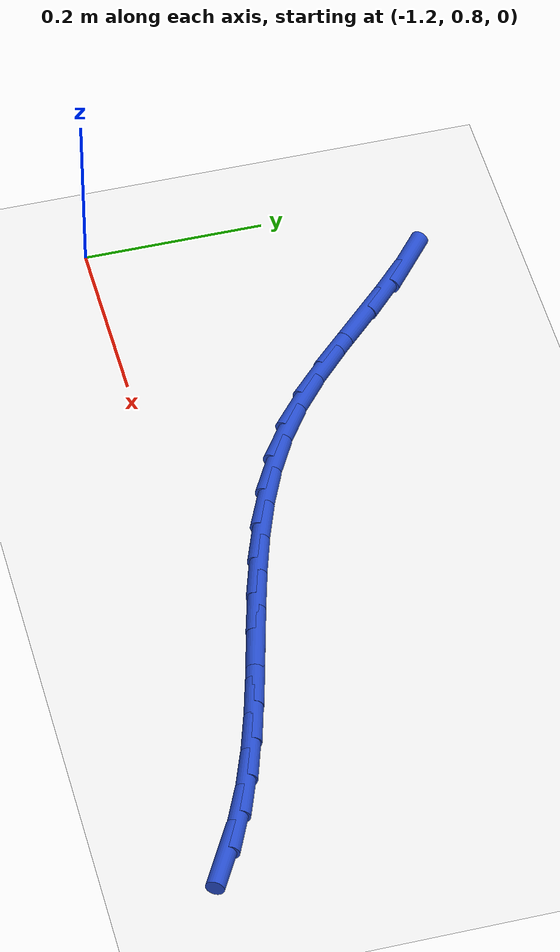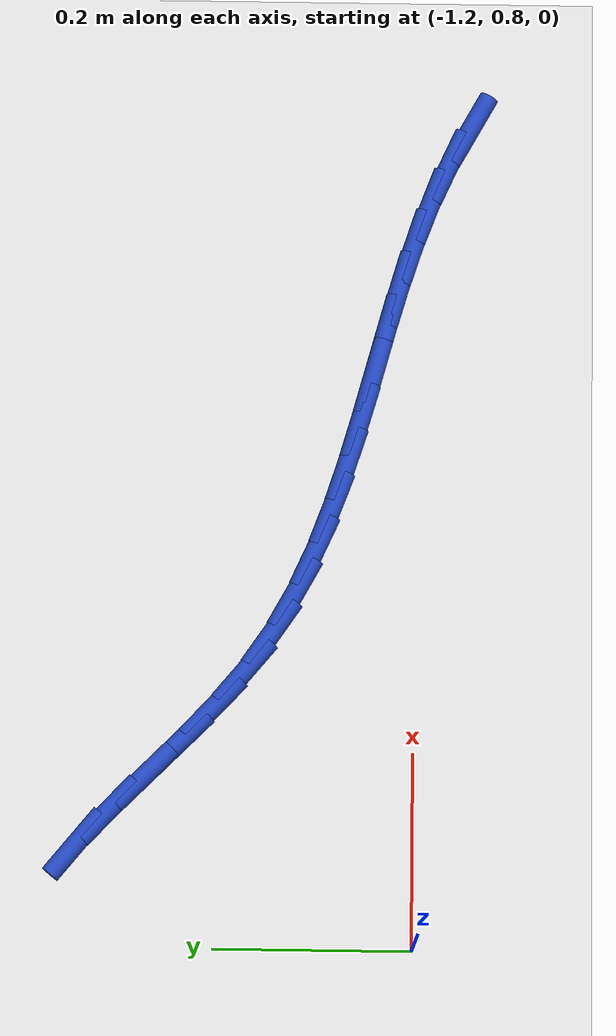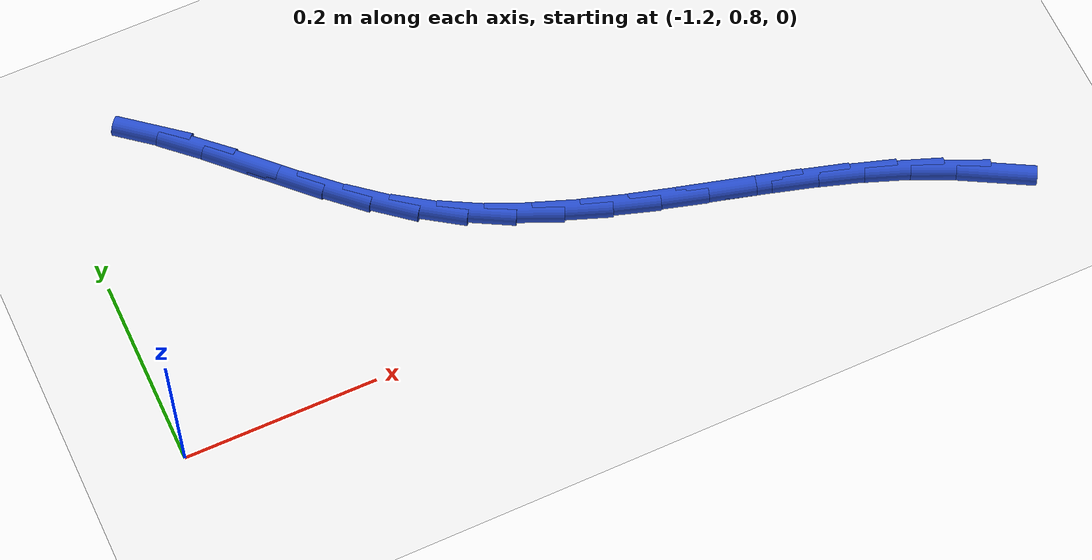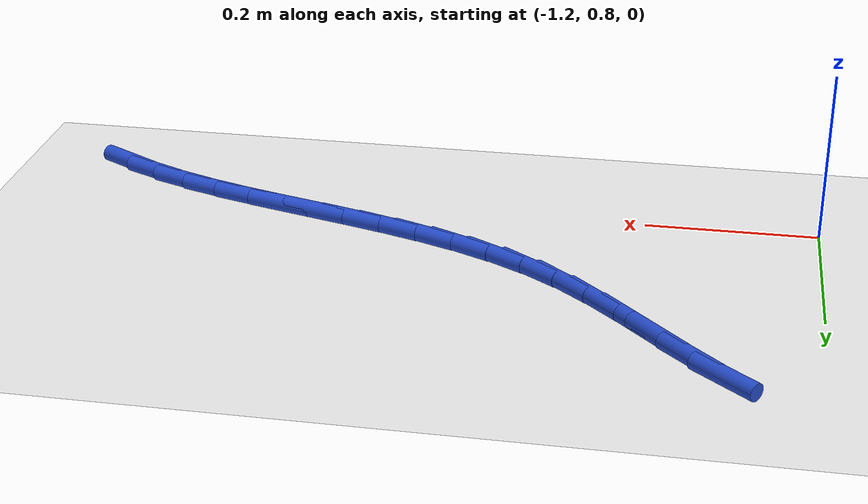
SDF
<sdf version="1.6">
 <world name="default">
  <model name="ground_plane">
   <static>1</static>
   <link name="link">
    <collision name="collision">
     <geometry><plane><normal>0 0 1</normal><size>100 100</size></plane></geometry>
     <surface><friction><ode><mu>100</mu><mu2>50</mu2></ode></friction></surface>
    </collision>
    <visual name="visual">
     <cast_shadows>0</cast_shadows>
     <geometry><plane><normal>0 0 1</normal><size>100 100</size></plane></geometry>
     <material>
      <script><uri>file://media/materials/scripts/gazebo.material</uri><name>Gazebo/WhiteGlow</name></script>
     </material>
    </visual>
   </link>
  </model>
  <model name="line">
   <link name="link_18">
    <pose>-0.351356424230301 0.7465493653353416 0.01 0 1.57 -0.5074278709803657</pose>
    <collision name="collision">
     <geometry><cylinder><radius>0.01</radius><length>0.08</length></cylinder></geometry>
    </collision>
    <visual name="visual">
     <material>
      <script><name>Gazebo/Blue</name><uri>file://media/materials/scripts/gazebo.material</uri></script>
     </material>
     <geometry><cylinder><radius>0.01</radius><length>0.08</length></cylinder></geometry>
    </visual>
   </link>
   <link name="link_19">
    <pose>-0.3915039302045219 0.7688708429847803 0.01 0 1.57 -0.4248515451725392</pose>
    <collision name="collision">
     <geometry><cylinder><radius>0.01</radius><length>0.08</length></cylinder></geometry>
    </collision>
    <visual name="visual">
     <material>
      <script><name>Gazebo/Blue</name><uri>file://media/materials/scripts/gazebo.material</uri></script>
     </material>
     <geometry><cylinder><radius>0.01</radius><length>0.08</length></cylinder></geometry>
    </visual>
   </link>
   <link name="link_20">
    <pose>-0.4335693364193069 0.7879014136960005 0.01 0 1.57 -0.3597683688413712</pose>
    <collision name="collision">
     <geometry><cylinder><radius>0.01</radius><length>0.08</length></cylinder></geometry>
    </collision>
    <visual name="visual">
     <material>
      <script><name>Gazebo/Blue</name><uri>file://media/materials/scripts/gazebo.material</uri></script>
     </material>
     <geometry><cylinder><radius>0.01</radius><length>0.08</length></cylinder></geometry>
    </visual>
   </link>
   <link name="link_21">
    <pose>-0.4771933829070298 0.8043100938879991 0.01 0 1.57 -0.3119741467545271</pose>
    <collision name="collision">
     <geometry><cylinder><radius>0.01</radius><length>0.08</length></cylinder></geometry>
    </collision>
    <visual name="visual">
     <material>
      <script><name>Gazebo/Blue</name><uri>file://media/materials/scripts/gazebo.material</uri></script>
     </material>
     <geometry><cylinder><radius>0.01</radius><length>0.08</length></cylinder></geometry>
    </visual>
   </link>
   <link name="link_22">
    <pose>-0.5220168097000639 0.8187658999797733 0.01 0 1.57 -0.2808331020607207</pose>
    <collision name="collision">
     <geometry><cylinder><radius>0.01</radius><length>0.08</length></cylinder></geometry>
    </collision>
    <visual name="visual">
     <material>
      <script><name>Gazebo/Blue</name><uri>file://media/materials/scripts/gazebo.material</uri></script>
     </material>
     <geometry><cylinder><radius>0.01</radius><length>0.08</length></cylinder></geometry>
    </visual>
   </link>
   <link name="link_23">
    <pose>-0.5676803568307829 0.8319378483903199 0.01 0 1.57 -0.2656926023756087</pose>
    <collision name="collision">
     <geometry><cylinder><radius>0.01</radius><length>0.08</length></cylinder></geometry>
    </collision>
    <visual name="visual">
     <material>
      <script><name>Gazebo/Blue</name><uri>file://media/materials/scripts/gazebo.material</uri></script>
     </material>
     <geometry><cylinder><radius>0.01</radius><length>0.08</length></cylinder></geometry>
    </visual>
   </link>
   <link name="link_24">
    <pose>-0.6138247643315603 0.844494955538636 0.01 0 1.57 -0.2661168557164873</pose>
    <collision name="collision">
     <geometry><cylinder><radius>0.01</radius><length>0.08</length></cylinder></geometry>
    </collision>
    <visual name="visual">
     <material>
      <script><name>Gazebo/Blue</name><uri>file://media/materials/scripts/gazebo.material</uri></script>
     </material>
     <geometry><cylinder><radius>0.01</radius><length>0.08</length></cylinder></geometry>
    </visual>
   </link>
   <link name="link_25">
    <pose>-0.66009077223477 0.8571062378437185 0.01 0 1.57 -0.28198190255938627</pose>
    <collision name="collision">
     <geometry><cylinder><radius>0.01</radius><length>0.08</length></cylinder></geometry>
    </collision>
    <visual name="visual">
     <material>
      <script><name>Gazebo/Blue</name><uri>file://media/materials/scripts/gazebo.material</uri></script>
     </material>
     <geometry><cylinder><radius>0.01</radius><length>0.08</length></cylinder></geometry>
    </visual>
   </link>
   <link name="link_26">
    <pose>-0.7061191205727851 0.8704407117245646 0.01 0 1.57 -0.31346458885444073</pose>
    <collision name="collision">
     <geometry><cylinder><radius>0.01</radius><length>0.08</length></cylinder></geometry>
    </collision>
    <visual name="visual">
     <material>
      <script><name>Gazebo/Blue</name><uri>file://media/materials/scripts/gazebo.material</uri></script>
     </material>
     <geometry><cylinder><radius>0.01</radius><length>0.08</length></cylinder></geometry>
    </visual>
   </link>
   <link name="link_27">
    <pose>-0.7515505493779797 0.8851673936001715 0.01 0 1.57 -0.3609311210586704</pose>
    <collision name="collision">
     <geometry><cylinder><radius>0.01</radius><length>0.08</length></cylinder></geometry>
    </collision>
    <visual name="visual">
     <material>
      <script><name>Gazebo/Blue</name><uri>file://media/materials/scripts/gazebo.material</uri></script>
     </material>
     <geometry><cylinder><radius>0.01</radius><length>0.08</length></cylinder></geometry>
    </visual>
   </link>
   <link name="link_28">
    <pose>-0.7960257986827268 0.9019552998895357 0.01 0 1.57 -0.42470658442955783</pose>
    <collision name="collision">
     <geometry><cylinder><radius>0.01</radius><length>0.08</length></cylinder></geometry>
    </collision>
    <visual name="visual">
     <material>
      <script><name>Gazebo/Blue</name><uri>file://media/materials/scripts/gazebo.material</uri></script>
     </material>
     <geometry><cylinder><radius>0.01</radius><length>0.08</length></cylinder></geometry>
    </visual>
   </link>
   <link name="link_29">
    <pose>-0.8391856085194009 0.9214734470116548 0.01 0 1.57 -0.5047029655454061</pose>
    <collision name="collision">
     <geometry><cylinder><radius>0.01</radius><length>0.08</length></cylinder></geometry>
    </collision>
    <visual name="visual">
     <material>
      <script><name>Gazebo/Blue</name><uri>file://media/materials/scripts/gazebo.material</uri></script>
     </material>
     <geometry><cylinder><radius>0.01</radius><length>0.08</length></cylinder></geometry>
    </visual>
   </link>
   <link name="link_30">
    <pose>-0.8806707189203746 0.9443908513855255 0.01 0 1.57 -0.5998304162295812</pose>
    <collision name="collision">
     <geometry><cylinder><radius>0.01</radius><length>0.08</length></cylinder></geometry>
    </collision>
    <visual name="visual">
     <material>
      <script><name>Gazebo/Blue</name><uri>file://media/materials/scripts/gazebo.material</uri></script>
     </material>
     <geometry><cylinder><radius>0.01</radius><length>0.08</length></cylinder></geometry>
    </visual>
   </link>
   <link name="link_31">
    <pose>-0.9201237133830552 0.9713722761646811 0.01 0 1.57 -0.6934824765537155</pose>
    <collision name="collision">
     <geometry><cylinder><radius>0.01</radius><length>0.08</length></cylinder></geometry>
    </collision>
    <visual name="visual">
     <material>
      <script><name>Gazebo/Blue</name><uri>file://media/materials/scripts/gazebo.material</uri></script>
     </material>
     <geometry><cylinder><radius>0.01</radius><length>0.08</length></cylinder></geometry>
    </visual>
   </link>
   <link name="link_32">
    <pose>-0.9574748278691393 1.0024188091575708 0.01 0 1.57 -0.7560283244380805</pose>
    <collision name="collision">
     <geometry><cylinder><radius>0.01</radius><length>0.08</length></cylinder></geometry>
    </collision>
    <visual name="visual">
     <material>
      <script><name>Gazebo/Blue</name><uri>file://media/materials/scripts/gazebo.material</uri></script>
     </material>
     <geometry><cylinder><radius>0.01</radius><length>0.08</length></cylinder></geometry>
    </visual>
   </link>
   <link name="link_33">
    <pose>-0.9932515942823049 1.036153449542708 0.01 0 1.57 -0.7864017336866168</pose>
    <collision name="collision">
     <geometry><cylinder><radius>0.01</radius><length>0.08</length></cylinder></geometry>
    </collision>
    <visual name="visual">
     <material>
      <script><name>Gazebo/Blue</name><uri>file://media/materials/scripts/gazebo.material</uri></script>
     </material>
     <geometry><cylinder><radius>0.01</radius><length>0.08</length></cylinder></geometry>
    </visual>
   </link>
   <link name="link_34">
    <pose>-1.028055887921355 1.0710276704922685 0.01 0 1.57 -0.7858564941942627</pose>
    <collision name="collision">
     <geometry><cylinder><radius>0.01</radius><length>0.08</length></cylinder></geometry>
    </collision>
    <visual name="visual">
     <material>
      <script><name>Gazebo/Blue</name><uri>file://media/materials/scripts/gazebo.material</uri></script>
     </material>
     <geometry><cylinder><radius>0.01</radius><length>0.08</length></cylinder></geometry>
    </visual>
   </link>
   <link name="link_35">
    <pose>-1.0624895840850905 1.1054929451784246 0.01 0 1.57 -0.7532954064187378</pose>
    <collision name="collision">
     <geometry><cylinder><radius>0.01</radius><length>0.08</length></cylinder></geometry>
    </collision>
    <visual name="visual">
     <material>
      <script><name>Gazebo/Blue</name><uri>file://media/materials/scripts/gazebo.material</uri></script>
     </material>
     <geometry><cylinder><radius>0.01</radius><length>0.08</length></cylinder></geometry>
    </visual>
   </link>
   <link name="link_36">
    <pose>-1.0971545580723139 1.1380007467733504 0.01 0 1.57 -0.6850183388531048</pose>
    <collision name="collision">
     <geometry><cylinder><radius>0.01</radius><length>0.08</length></cylinder></geometry>
    </collision>
    <visual name="visual">
     <material>
      <script><name>Gazebo/Blue</name><uri>file://media/materials/scripts/gazebo.material</uri></script>
     </material>
     <geometry><cylinder><radius>0.01</radius><length>0.08</length></cylinder></geometry>
    </visual>
   </link>
  </model>
 </world>
</sdf>
